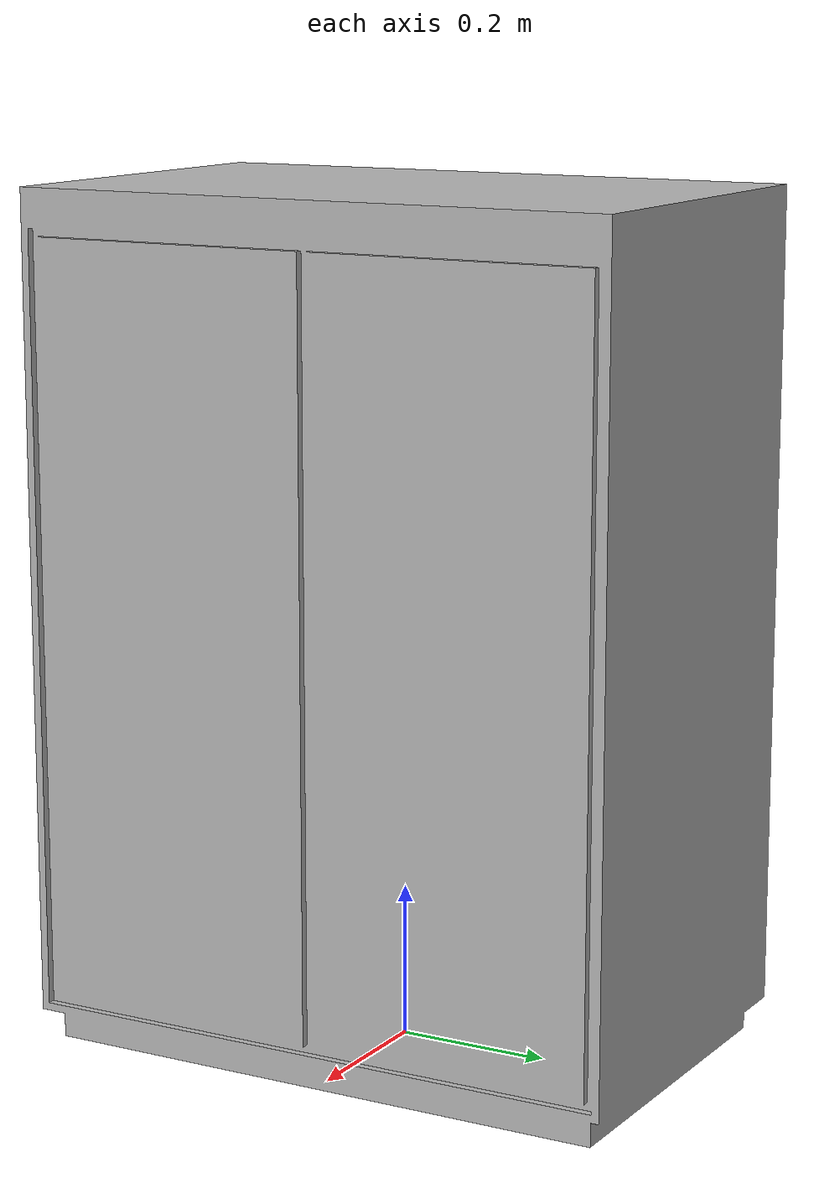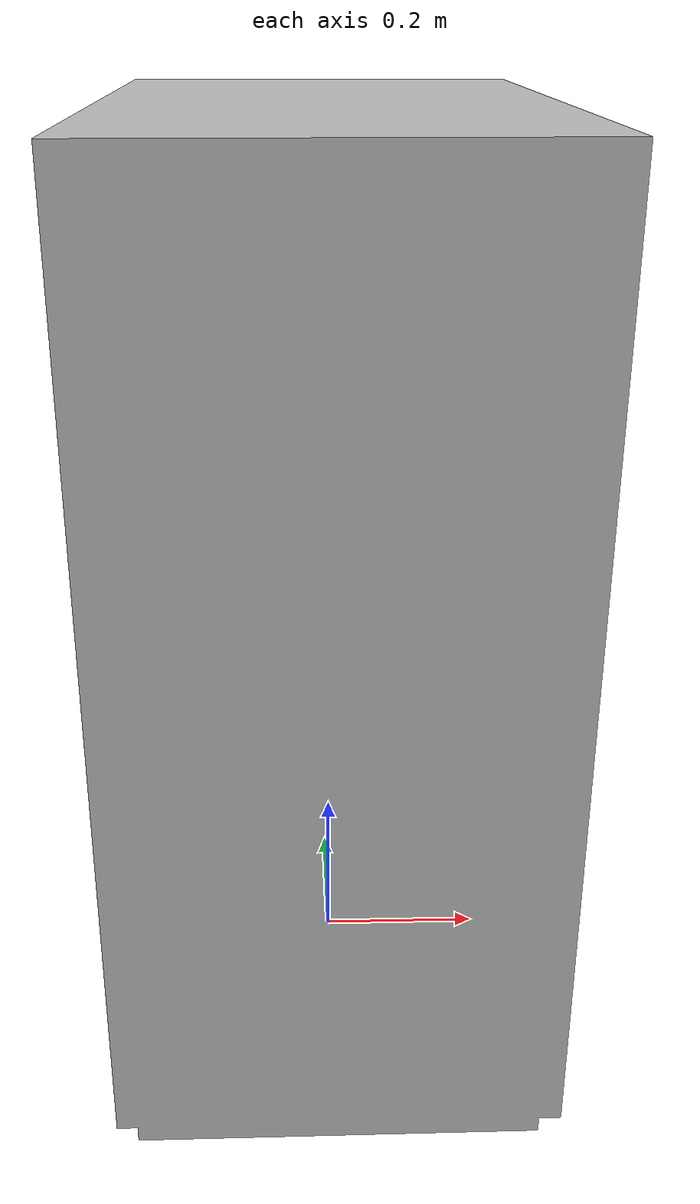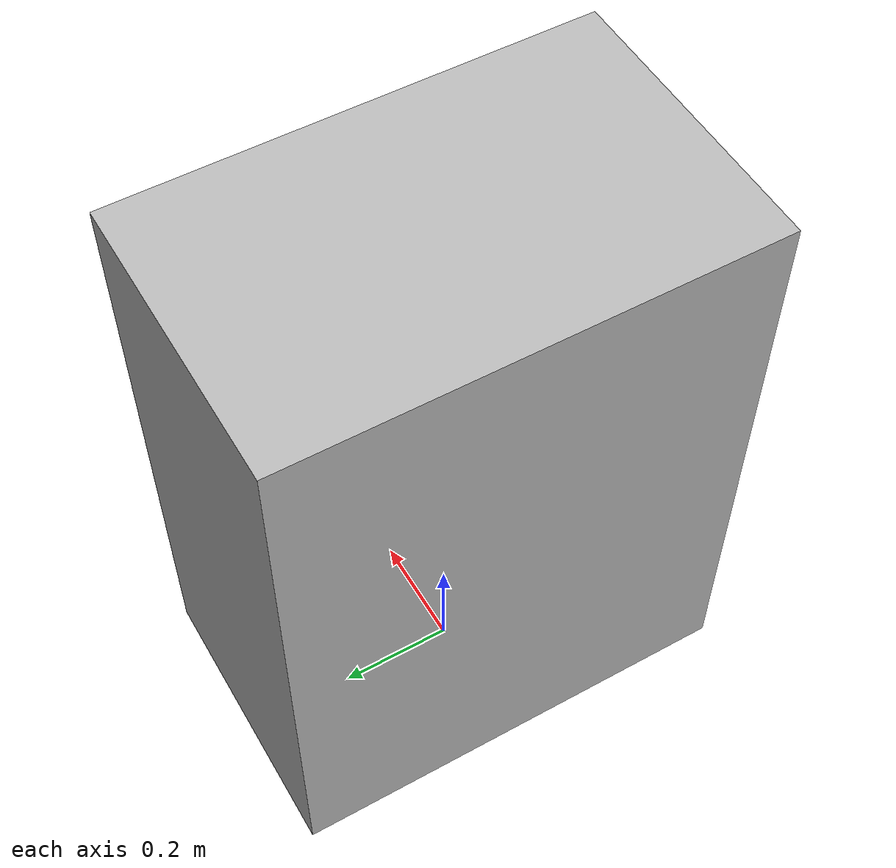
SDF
<?xml version='1.0' encoding='utf-8'?>
<sdf version="1.10">
    <model name="SmallCabinet">
        <static>true</static>
        <link name="body">
            <pose>0 0 0 0 0 0</pose>
            <visual name="visual">
                <geometry>
                    <mesh>
                        <uri>model://SmallCabinet/meshes/SmallCabinet.obj</uri>
                    </mesh>
                </geometry>
            </visual>
            <collision name="collision">
                <geometry>
                    <mesh>
                        <uri>model://SmallCabinet/meshes/SmallCabinet.obj</uri>
                    </mesh>
                </geometry>
            </collision>
        </link>
    </model>
</sdf>
